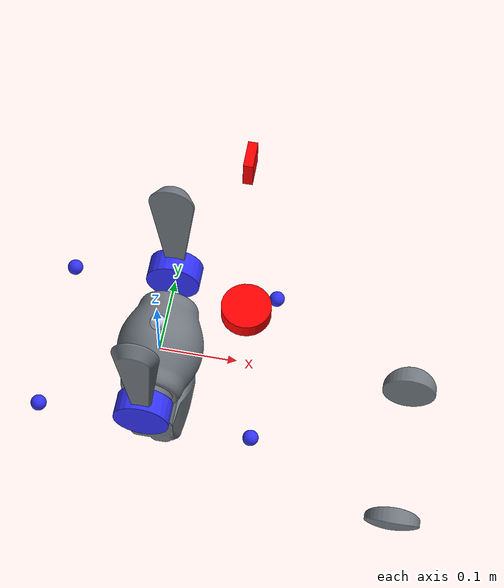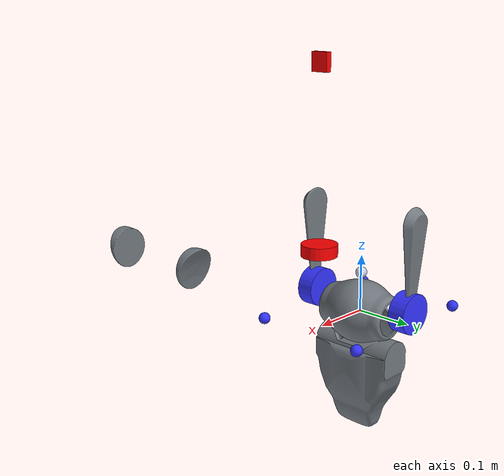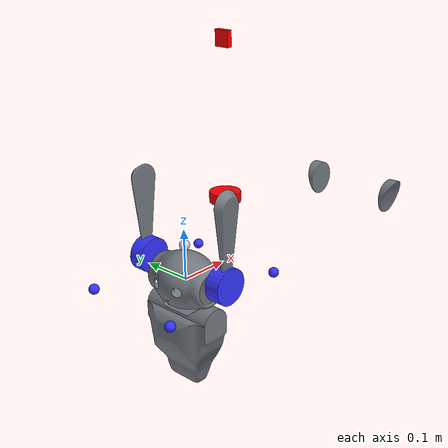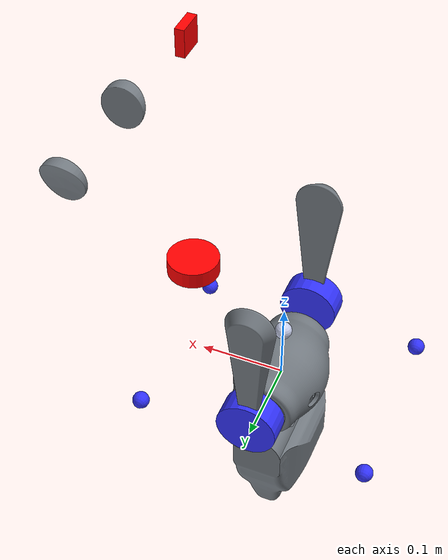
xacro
<?xml version="1.0"?>
<robot xmlns:xacro="http://www.ros.org/wiki/xacro" name="Robot">

    <xacro:arg name="use_sim_time" default="true" />
    <xacro:arg name="diff_arduino_id" default="/dev/ttyACM0" />

    <xacro:include filename="inertial_macros.xacro" />

    <xacro:include filename="$(find robot_model)/urdf/bot_core.xacro" />
    <xacro:include filename="$(find robot_model)/urdf/bot_drive.xacro" />
    <xacro:include filename="$(find robot_model)/urdf/Robot.urdf" />

    <!-- Include Gazebo Parameters -->
    <xacro:include filename="$(find robot_model)/urdf/robot_gazebo.xacro" />
    <xacro:include filename="$(find robot_model)/urdf/robot_ros2_control.xacro" />

    <xacro:include filename="sensors/lidar.xacro" />
    <xacro:include filename="sensors/camera.xacro" />
    <xacro:include filename="sensors/imu.urdf.xacro" />

</robot>

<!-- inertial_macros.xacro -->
<robot xmlns:xacro="http://www.ros.org/wiki/xacro">

    <!-- Specify some standard inertial calculations
    https://en.wikipedia.org/wiki/List_of_moments_of_inertia -->
    <!-- These make use of xacro's mathematical functionality -->

    <xacro:property name="PI" value="3.14159" />
    <xacro:property name="effort" value="30.0" />
    <xacro:property name="velocity" value="10.0" />

    <material name="white">
        <color rgba="1 1 1 1" />
    </material>

    <material name="orange">
        <color rgba="1 0.3 0.1 1" />
    </material>

    <material name="blue">
        <color rgba="0.2 0.2 1 1" />
    </material>

    <material name="black">
        <color rgba="0 0 0 1" />
    </material>

    <material name="red">
        <color rgba="1 0 0 1"/>
    </material>

    <xacro:macro name="default_inertial" params="mass">
        <inertial>
            <mass value="${mass}" />
            <origin xyz="0.0 0.0 0.0" rpy="0.0 0.0 0.0" />
            <inertia ixx="1.0" ixy="0.0" ixz="0.0" iyy="1.0" iyz="0.0" izz="1.0" />
        </inertial>
    </xacro:macro>

    <xacro:macro name="default_transmission" params="number">
        <transmission name="transmission_${number}">
            <plugin>transmission_interface/SimpleTransmission</plugin>
            <joint name="${number}" role="joint1">
                <mechanicalReduction>1.0</mechanicalReduction>
            </joint>
            <actuator name="actuator_${number}" role="actuator1">
            </actuator>
        </transmission>
    </xacro:macro>

    <xacro:macro name="inertial_sphere" params="mass radius *origin">
        <inertial>
            <xacro:insert_block name="origin" />
            <mass value="${mass}" />
            <inertia ixx="${(2/5) * mass * (radius*radius)}" ixy="0.0" ixz="0.0"
                iyy="${(2/5) * mass * (radius*radius)}" iyz="0.0"
                izz="${(2/5) * mass * (radius*radius)}" />
        </inertial>
    </xacro:macro>

    <xacro:macro name="inertial_box" params="mass x y z *origin">
        <inertial>
            <xacro:insert_block name="origin" />
            <mass value="${mass}" />
            <inertia ixx="${(1/12) * mass * (y*y+z*z)}" ixy="0.0" ixz="0.0"
                iyy="${(1/12) * mass * (x*x+z*z)}" iyz="0.0"
                izz="${(1/12) * mass * (x*x+y*y)}" />
        </inertial>
    </xacro:macro>

    <xacro:macro name="inertial_cylinder" params="mass length radius *origin">
        <inertial>
            <xacro:insert_block name="origin" />
            <mass value="${mass}" />
            <inertia ixx="${(1/12) * mass * (3*radius*radius + length*length)}" ixy="0.0" ixz="0.0"
                iyy="${(1/12) * mass * (3*radius*radius + length*length)}" iyz="0.0"
                izz="${(1/2) * mass * (radius*radius)}" />
        </inertial>
    </xacro:macro>

    <!-- joint macros -->

</robot>

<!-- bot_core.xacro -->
<robot name="robot" xmlns:xacro="http://ros.org/wiki/xacro">

  <!-- main body model  -->
  <!-- ODOM  to base_link -->

  <link name="base_link">
  </link>

  <joint name="base_joint" type="fixed">
    <parent link="base_link" />
    <child link="base_footprint" />
    <origin xyz="0 0 0" rpy="0 0 0" />
  </joint>
  <link name="base_footprint"></link>

  <joint name="chassis_connect_joint" type="fixed">
    <parent link="base_link" />
    <child link="chassis" />
    <origin xyz="0 0 0"  rpy="0 0 0" />
  </joint>

  <link name="chassis">
    <inertial>
      <mass value="8.0"/>
      <origin rpy="0.0 -0.0 0.0" xyz="0.0 0.0 0.0"/>
      <inertia ixx="0.0" ixy="0.0" ixz="0.0" iyy="0.0" iyz="0.0" izz="0.0"/>
    </inertial>
  </link>

  <joint name="chassis_joint" type="fixed">
    <parent link="chassis" />
    <child link="Link" />
    <origin xyz="0 0 0"  rpy="0 0 -${pi/2}" />
  </joint>

</robot>

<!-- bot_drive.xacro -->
<robot  xmlns:xacro="http://ros.org/wiki/xacro">

  <link name="wheel_left_link">
    <visual>
      <geometry>
        <cylinder radius="0.035" length="0.03" />
      </geometry>
      <material name="blue" />
    </visual>
    <collision>
      <geometry>
        <cylinder radius="0.035" length="0.03" />
      </geometry>
    </collision>
    <xacro:inertial_cylinder mass="1.1" length="0.03" radius="0.036">
      <origin xyz="0 0 0" rpy="0 0 0" />
    </xacro:inertial_cylinder>
  </link>

  <link name="wheel_right_link">
    <visual>
      <geometry>
        <cylinder radius="0.035" length="0.03" />
      </geometry>
      <material name="blue" />
    </visual>
    <collision>
      <geometry>
        <cylinder radius="0.035" length="0.03" />
      </geometry>
    </collision>
    <xacro:inertial_cylinder mass="1.1" length="0.03" radius="0.036">
      <origin xyz="0 0 0" rpy="0 0 0" />
    </xacro:inertial_cylinder>
  </link>

  <link name="caster_front_link">
    <visual>
      <geometry>
        <sphere radius="0.01" />
      </geometry>
      <material name="blue" />
    </visual>
    <collision>
      <geometry>
        <sphere radius="0.01" />
      </geometry>
    </collision>
    <xacro:inertial_cylinder mass="1.1" length="0.04" radius="0.01">
      <origin xyz="0 0 0" rpy="0 0 0" />
    </xacro:inertial_cylinder>
  </link>
  <link name="caster_rear_link">
    <visual>
      <geometry>
        <sphere radius="0.01" />
      </geometry>
      <material name="blue" />
    </visual>
    <collision>
      <geometry>
        <sphere radius="0.01" />
      </geometry>
    </collision>
    <xacro:inertial_cylinder mass="1.1" length="0.04" radius="0.01">
      <origin xyz="0 0 0" rpy="0 0 0" />
    </xacro:inertial_cylinder>
  </link>
  <link name="caster_front_link_1">
    <visual>
      <geometry>
        <sphere radius="0.01" />
      </geometry>
      <material name="blue" />
    </visual>
    <collision>
      <geometry>
        <sphere radius="0.01" />
      </geometry>
    </collision>
    <xacro:inertial_cylinder mass="1.1" length="0.04" radius="0.01">
      <origin xyz="0 0 0" rpy="0 0 0" />
    </xacro:inertial_cylinder>
  </link>
  <link name="caster_rear_link_1">
    <visual>
      <geometry>
        <sphere radius="0.01" />
      </geometry>
      <material name="blue" />
    </visual>
    <collision>
      <geometry>
        <sphere radius="0.01" />
      </geometry>
    </collision>
    <xacro:inertial_cylinder mass="1.1" length="0.04" radius="0.01">
      <origin xyz="0 0 0" rpy="0 0 0" />
    </xacro:inertial_cylinder>
  </link>

  <!-- chassis ==to== right tyre  -->
  <joint name="wheel_left_joint" type="continuous">
    <parent link="chassis" />
    <child link="wheel_left_link" />
    <origin xyz="0.0 0.1 0.022" rpy="-${pi/2} 0 0" />
    <axis xyz="0 0 1" />
        <limit effort="100" velocity="10.0"/>
        <dynamics damping="0.1" friction="0.1"/>
  </joint>
  <!-- chassis ==to== left tyre  -->
  <joint name="wheel_right_joint" type="continuous">
    <parent link="chassis" />
    <child link="wheel_right_link" />
    <origin xyz="0.0 -0.1 0.022" rpy="${pi/2} 0 0" />
    <axis xyz="0 0 -1" />
        <limit effort="100" velocity="10.0"/>
        <dynamics damping="0.1" friction="0.1"/>
  </joint>

  <!-- chassis ==to== caster wheel  -->
  <joint name="body_to_caster_wheel_Joint_1" type="fixed">
    <parent link="chassis" />
    <child link="caster_front_link" />
    <origin xyz="0.135 -0.101 -0.003" rpy="${pi/2} 0 0" />
    <axis xyz="0 0 1" />
  </joint>
  <joint name="body_to_caster_wheel_Joint_2" type="fixed">
    <parent link="chassis" />
    <child link="caster_rear_link" />
    <origin xyz="0.135 0.101 -0.003" rpy="${pi/2} 0 0" />
    <axis xyz="0 0 1" />
  </joint>
  <joint name="body_to_caster_wheel_Joint_3" type="fixed">
    <parent link="chassis" />
    <child link="caster_rear_link_1" />
    <origin xyz="-0.135 -0.101 -0.003" rpy="${pi/2} 0 0" />
    <axis xyz="0 0 1" />
  </joint>
  <joint name="body_to_caster_wheel_Joint_4" type="fixed">
    <parent link="chassis" />
    <child link="caster_front_link_1" />
    <origin xyz="-0.135 0.101 -0.003" rpy="${pi/2} 0 0" />
    <axis xyz="0 0 1" />
  </joint>

</robot>

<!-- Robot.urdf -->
<robot name="Robot">
  <!--Generated by CROSS, a ROS Workbench for FreeCAD (https://github.com/galou/freecad.cross)-->
  <link name="Link">
    <visual>
      <!--main_body_parts001/Associated_Part_009.Part__Feature022.-->
      <origin xyz="0.0 0.0 0.0" rpy="0.0 -0.0 0.0"/>
      <geometry>
        <mesh filename="package://robot_model/meshes/ahilya_mini_shapes_Associated_Part_021.dae"/>
      </geometry>
    </visual>
    <visual>
      <!--main_body_parts001/Associated_Part_009.Part__Feature023.-->
      <origin xyz="0.0 0.0 0.0" rpy="0.0 -0.0 0.0"/>
      <geometry>
        <mesh filename="package://robot_model/meshes/ahilya_mini_shapes_Associated_Part_022.dae"/>
      </geometry>
    </visual>
    <visual>
      <!--main_body_parts001/Cut.-->
      <origin xyz="0.0 0.0 0.0" rpy="0.0 -0.0 0.0"/>
      <geometry>
        <mesh filename="package://robot_model/meshes/ahilya_mini_shapes_Cut.dae"/>
      </geometry>
    </visual>
    <collision>
      <!--main_body_parts001/Associated_Part_009.Part__Feature022.-->
      <origin xyz="0.0 0.0 0.0" rpy="0.0 -0.0 0.0"/>
      <geometry>
        <mesh filename="package://robot_model/meshes/ahilya_mini_shapes_Associated_Part_021.dae"/>
      </geometry>
    </collision>
    <collision>
      <!--main_body_parts001/Associated_Part_009.Part__Feature023.-->
      <origin xyz="0.0 0.0 0.0" rpy="0.0 -0.0 0.0"/>
      <geometry>
        <mesh filename="package://robot_model/meshes/ahilya_mini_shapes_Associated_Part_022.dae"/>
      </geometry>
    </collision>
    <collision>
      <!--main_body_parts001/Cut.-->
      <origin xyz="0.0 0.0 0.0" rpy="0.0 -0.0 0.0"/>
      <geometry>
        <mesh filename="package://robot_model/meshes/ahilya_mini_shapes_Cut.dae"/>
      </geometry>
    </collision>
    <inertial>
      <mass value="0.0"/>
      <origin xyz="0.0 0.0 0.0" rpy="0.0 -0.0 0.0"/>
      <inertia ixx="0.0" ixy="0.0" ixz="0.0" iyy="0.0" iyz="0.0" izz="0.0"/>
    </inertial>
  </link>
  <link name="Link001">
    <visual>
      <!--fins-->
      <origin xyz="0.0 0.0 0.0" rpy="0.0 -0.0 0.0"/>
      <geometry>
        <mesh filename="package://robot_model/meshes/ahilya_mini_shapes_fins.dae"/>
      </geometry>
    </visual>
    <collision>
      <!--fins-->
      <origin xyz="0.0 0.0 0.0" rpy="0.0 -0.0 0.0"/>
      <geometry>
        <mesh filename="package://robot_model/meshes/ahilya_mini_shapes_fins.dae"/>
      </geometry>
    </collision>
    <inertial>
      <mass value="0.0"/>
      <origin xyz="0.0 0.0 0.0" rpy="0.0 -0.0 0.0"/>
      <inertia ixx="0.0" ixy="0.0" ixz="0.0" iyy="0.0" iyz="0.0" izz="0.0"/>
    </inertial>
  </link>
  <link name="Link002">
    <visual>
      <!--fins (Mirror #1)-->
      <origin xyz="0.0 0.0 0.0" rpy="0.0 -0.0 0.0"/>
      <geometry>
        <mesh filename="package://robot_model/meshes/ahilya_mini_shapes_fins_Mirror_1_.dae"/>
      </geometry>
    </visual>
    <collision>
      <!--fins (Mirror #1)-->
      <origin xyz="0.0 0.0 0.0" rpy="0.0 -0.0 0.0"/>
      <geometry>
        <mesh filename="package://robot_model/meshes/ahilya_mini_shapes_fins_Mirror_1_.dae"/>
      </geometry>
    </collision>
    <inertial>
      <mass value="0.0"/>
      <origin xyz="0.0 0.0 0.0" rpy="0.0 -0.0 0.0"/>
      <inertia ixx="0.0" ixy="0.0" ixz="0.0" iyy="0.0" iyz="0.0" izz="0.0"/>
    </inertial>
  </link>
  <link name="Link003">
    <visual>
      <!--head-->
      <origin xyz="0.0 0.0 0.0" rpy="0.0 -0.0 0.0"/>
      <geometry>
        <mesh filename="package://robot_model/meshes/ahilya_mini_shapes_head.dae"/>
      </geometry>
    </visual>
    <collision>
      <!--head-->
      <origin xyz="0.0 0.0 0.0" rpy="0.0 -0.0 0.0"/>
      <geometry>
        <mesh filename="package://robot_model/meshes/ahilya_mini_shapes_head.dae"/>
      </geometry>
    </collision>
    <inertial>
      <mass value="0.0"/>
      <origin xyz="0.0 0.0 0.0" rpy="0.0 -0.0 0.0"/>
      <inertia ixx="0.0" ixy="0.0" ixz="0.0" iyy="0.0" iyz="0.0" izz="0.0"/>
    </inertial>
  </link>
  <joint name="Joint" type="continuous">
    <parent link="Link"/>
    <child link="Link002"/>
    <origin xyz="0.0 0.0 0.0" rpy="0.0 -0.0 0.0"/>
    <axis xyz="1 0 0"/>
  </joint>
  <joint name="Joint001" type="continuous">
    <parent link="Link"/>
    <child link="Link001"/>
    <origin xyz="0.0 0.0 0.0" rpy="0.0 -0.0 0.0"/>
    <axis xyz="1 0 0"/>
  </joint>
  <joint name="Joint002" type="continuous">
    <parent link="Link"/>
    <child link="Link003"/>
    <origin xyz="0.0 0.0 0.0" rpy="0.0 -0.0 0.0"/>
    <axis xyz="0 0 1"/>
  </joint>
</robot>

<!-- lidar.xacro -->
<robot xmlns:xacro="http://www.ros.org/wiki/xacro" >

    <joint name="laser_joint" type="fixed">
        <parent link="base_link"/>
        <child link="laser_frame"/>
        <origin xyz="0.11 0.0 0.135" rpy="0 0 0"/>
    </joint>

    <link name="laser_frame">
        <visual>
            <geometry>
                <cylinder radius="0.03" length="0.02"/>
            </geometry>
            <material name="red"/>
        </visual>
        <collision>
            <geometry>
                <cylinder radius="0.03" length="0.02"/>
            </geometry>
        </collision>
        <xacro:inertial_cylinder mass="0.1" length="0.04" radius="0.05">
            <origin xyz="0 0 0" rpy="0 0 0"/>
        </xacro:inertial_cylinder>
    </link>

    <gazebo reference="laser_frame">
        <material>Gazebo/Red</material>

        <sensor name="laser" type="gpu_lidar">
            <pose> 0 0 0 0 0 0 </pose>
            <visualize>false</visualize>
            <update_rate>10</update_rate>
            <lidar>
                <scan>
                    <horizontal>
                        <samples>360</samples>
                        <min_angle>-3.14</min_angle>
                        <max_angle>3.14</max_angle>
                    </horizontal>
                </scan>
                <range>
                    <min>0.3</min>
                    <max>12</max>
                </range>
            </lidar>
             <topic>scan</topic>
            <gz_frame_id>laser_frame</gz_frame_id>

        </sensor>

    </gazebo>

</robot>

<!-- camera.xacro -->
<robot xmlns:xacro="http://www.ros.org/wiki/xacro" >

    <joint name="camera_joint" type="fixed">
        <parent link="base_link"/>
        <child link="camera_link"/>
        <origin xyz="0.11 0.0 0.43" rpy="0 0 0"/>
    </joint>

    <link name="camera_link">
        <visual>
            <geometry>
                <box size="0.010 0.03 0.03"/>
            </geometry>
            <material name="red"/>
        </visual>
        <collision>
            <geometry>
                <box size="0.010 0.03 0.03"/>
            </geometry>
            <material name="red"/>
        </collision>
    </link>

    <joint name="camera_optical_joint" type="fixed">
        <parent link="camera_link"/>
        <child link="camera_link_optical"/>
        <origin xyz="0 0 0" rpy="${-PI/2} 0 ${-PI/2}"/>
    </joint>

    <link name="camera_link_optical"></link>

    <gazebo reference="camera_link">
        <material>Gazebo/Red</material>

        <sensor name="camera" type="camera">
            <pose> 0 0 0 0 0 0 </pose>
            <visualize>true</visualize>
            <update_rate>10</update_rate>
            <camera>
                <horizontal_fov>1.089</horizontal_fov>
                <image>
                <camera_info_topic>camera/camera_info</camera_info_topic>
                    <format>R8G8B8</format>
                    <width>640</width>
                    <height>480</height>
                </image>
                <clip>
                    <near>0.05</near>
                    <far>8.0</far>
                </clip>
            </camera>
            <topic>camera/image_raw</topic>
            <gz_frame_id>camera_link_optical</gz_frame_id>

        </sensor>
    </gazebo>

</robot>

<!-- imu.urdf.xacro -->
<robot xmlns:xacro="http://ros.org/wiki/xacro">

  <link name="imu_link">
    <inertial>
      <origin xyz="-0.00552433659106688 0.000168210391520346 0.000514000497342681" rpy="0 0 0" />
      <mass value="0.000528415362211671" />
      <inertia ixx="1.46176048428261E-08" ixy="1.40015117949421E-10" ixz="-1.99633872937403E-12"
        iyy="8.59662482954888E-09" iyz="7.52375112767959E-12"
        izz="2.30279421279312E-08" />
    </inertial>
    <visual>
      <origin xyz="0 0 0" rpy="0 0 0" />
      <geometry>
        <sphere radius="0.01" />
      </geometry>
      <material name="">
        <color rgba="0.792156862745098 0.819607843137255 0.933333333333333 1" />
      </material>
    </visual>
    <collision>
      <origin xyz="0 0 0" rpy="0 0 0" />
      <geometry>
        <sphere radius="0.01" />
      </geometry>
    </collision>
  </link>

  <!-- imu_to_base_link -->
  <joint name="imu_joint" type="fixed">
    <origin xyz="0 0 0.0698986241758014" rpy="0 0 0" />
    <parent link="base_link" />
    <child link="imu_link" />
    <axis xyz="0 0 0" />
  </joint>

  <gazebo>
    <plugin filename="gz-sim-imu-system" name="gz::sim::systems::Imu">
    </plugin>
  </gazebo>

  <gazebo reference="imu_link">
    <material>
      <ambient>0.1 0.1 0.1 1</ambient>
      <diffuse>0.1 0.1 0.1 1</diffuse>
      <specular>0.1 0.1 0.1 1</specular>
    </material>
    <sensor name="imu_sensor" type="imu">
      <topic>imu</topic>
      <update_rate>100</update_rate>
      <always_on>true</always_on>
      <visualize>false</visualize>
      <gz_frame_id>imu_link</gz_frame_id>
      <imu>
        <angular_velocity>
          <x>
            <noise type="gaussian">
              <mean>0.0</mean>
              <stddev>2e-4</stddev>
            </noise>
          </x>
          <y>
            <noise type="gaussian">
              <mean>0.0</mean>
              <stddev>2e-4</stddev>
            </noise>
          </y>
          <z>
            <noise type="gaussian">
              <mean>0.0</mean>
              <stddev>2e-4</stddev>
            </noise>
          </z>
        </angular_velocity>
        <linear_acceleration>
          <x>
            <noise type="gaussian">
              <mean>0.0</mean>
              <stddev>1.7e-2</stddev>
            </noise>
          </x>
          <y>
            <noise type="gaussian">
              <mean>0.0</mean>
              <stddev>1.7e-2</stddev>
            </noise>
          </y>
          <z>
            <noise type="gaussian">
              <mean>0.0</mean>
              <stddev>1.7e-2</stddev>
            </noise>
          </z>
        </linear_acceleration>
      </imu>
    </sensor>
  </gazebo>

</robot>
